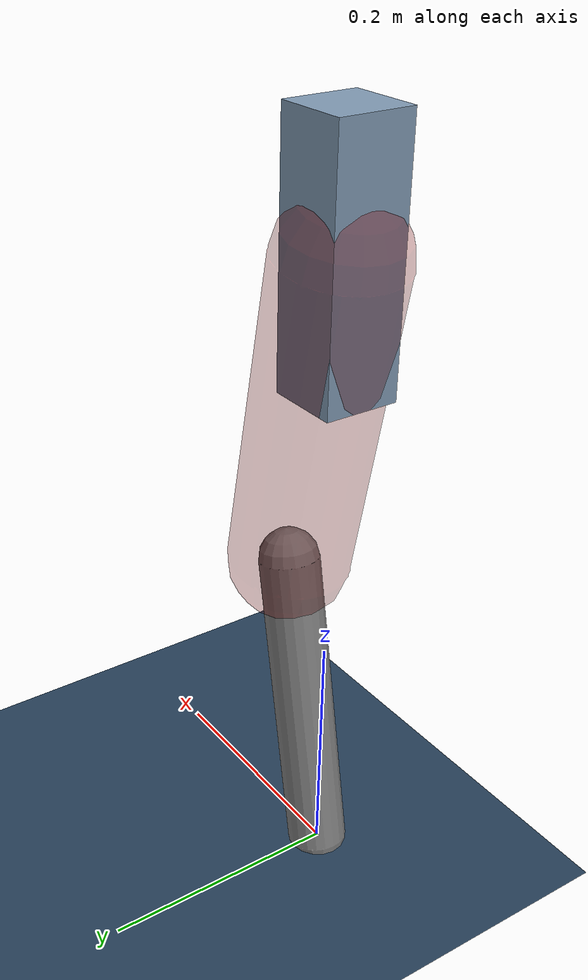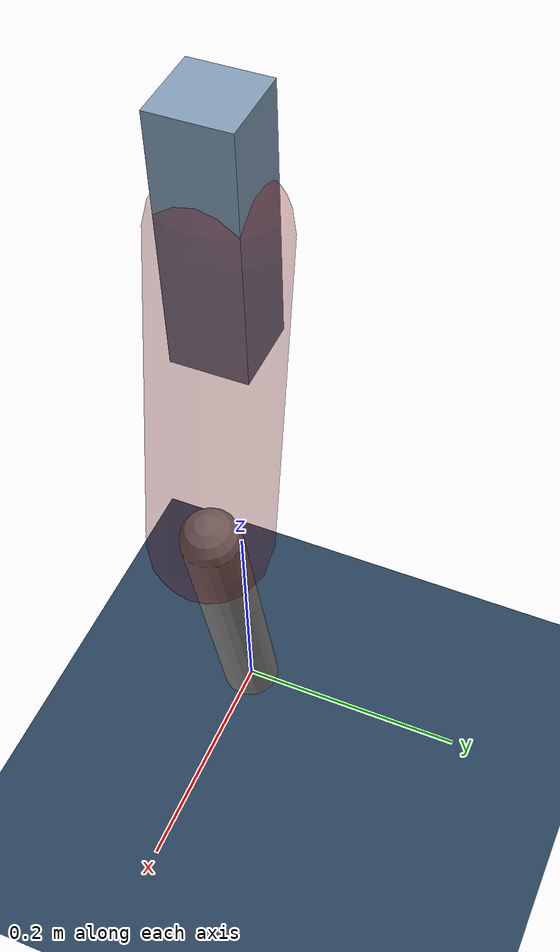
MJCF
<mujoco model="Hopper2D">
	<compiler inertiafromgeom="true" angle="radian" />
	<option timestep="0.001" integrator="implicit" cone="elliptic" solver="Newton" tolerance="1e-10" />

	<default>
		<geom contype="1" conaffinity="1" condim="3" friction="2 0.005 0.0001" solref="0.005 1" />
		<joint limited="true" damping="0.1" />
	</default>

	<asset>
		<texture name="skybox" type="skybox" builtin="gradient" rgb1=".4 .6 .8" rgb2="0 0 0" width="800" height="800" />
		<texture name="grid" type="2d" builtin="checker" rgb1=".1 .2 .3" rgb2=".2 .3 .4" width="300" height="300" mark="edge" markrgb=".2 .3 .4" />
		<material name="ground" texture="grid" texrepeat="1 1" texuniform="true" reflectance="0.1" />
		<material name="leg" rgba="0.5 0.6 0.7 1" />
	</asset>

	<worldbody>

		<geom name="floor" type="plane" size="5 5 0.25" material="ground" />

		<light directional="false" diffuse="0.8 0.8 0.8" specular="0.3 0.3 0.3" pos="0 0 2" dir="0 0 -1" />
		<light mode="targetbodycom" target="base" directional="false" diffuse="0.8 0.8 0.8" specular="0.3 0.3 0.3" pos="0 0 2" dir="0 0 -1" />

		<camera name="fixed" pos="0 -2 1" xyaxes="1 0 0 0 0 1" />
		<camera name="tracking" mode="trackcom" pos="0 -3 1" />

		<body name="root" pos="0 0 0.522051979604691">
			<joint name="slide_x" type="slide" axis="1 0 0" range="-100 100" />
			<joint name="slide_z" type="slide" axis="0 0 1" range="0 10" />

			<body name="base" pos="0 0 0">
				<geom name="torso" type="box" size="0.03 0.03 0.1" mass="3.09" material="leg" />

				<body name="link1" pos="0 0 0" euler="0 1.3758590909382653 0">
					<joint type="hinge" axis="0 -1 0" pos="0 0 0" name="hinge1" limited="true" range="-3.14 3.14" stiffness="0" damping="0.1" />
					<geom name="thigh" type="capsule" fromto="0 0 0 0.26501332866353144 0 0" size="0.05" rgba="0.5 0 0 0.3" mass="0.8955346545251817" />

					<body name="link2" pos="0.26501332866353144 0 0" euler="0 0.3883771978810394 0">
						<joint type="hinge" axis="0 -1 0" pos="0 0 0" name="hinge2" limited="true" range="-3.14 3.14" stiffness="0" damping="0.1" />
						<geom name="shank" type="capsule" fromto="0 0 0 0.2670386509411596 0 0" size="0.025" mass="0.45653092075292767" />

					</body>
				</body>
			</body>
		</body>
	</worldbody>

	<actuator>
		<motor name="torque1" joint="hinge1" ctrlrange="-82.99271297368877 82.99271297368877" ctrllimited="true" gear="1" />
		<motor name="torque2" joint="hinge2" ctrlrange="-138.29470900633302 138.29470900633302" ctrllimited="true" gear="1" />
	</actuator>
</mujoco>
